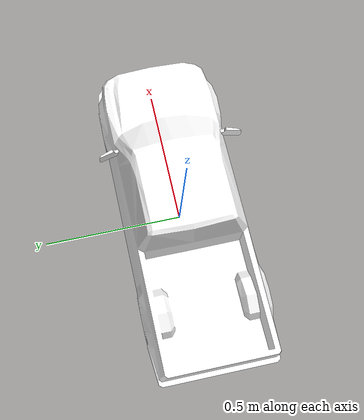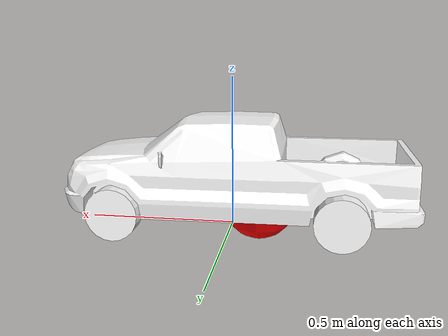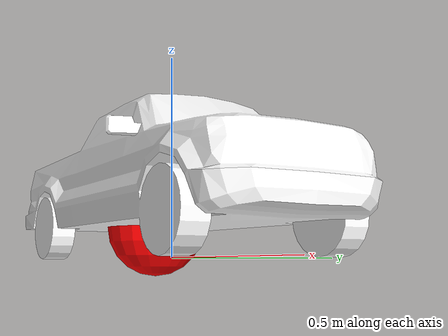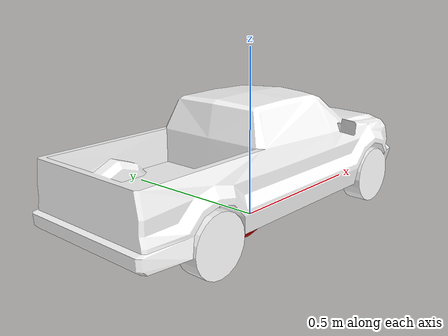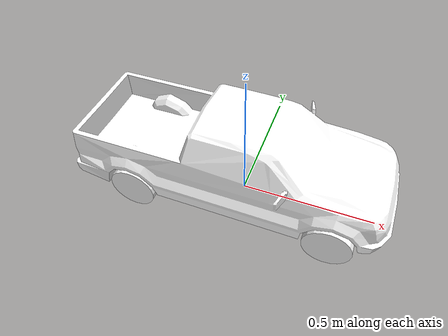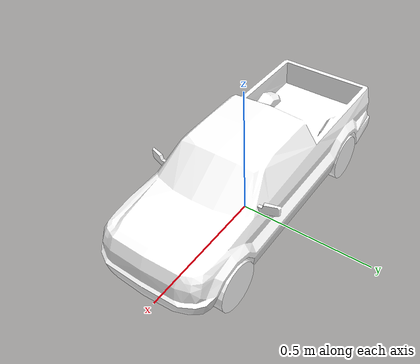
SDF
<?xml version='1.0'?>
<sdf version='1.6'>
<model name="box">
      <link name='link'>
      <self_collide>0</self_collide>
      <enable_wind>0</enable_wind>
      <kinematic>0</kinematic>
      <pose frame=''>-0.001072 0.00268 0 0 -0 0</pose>
      <gravity>1</gravity>
      <inertial>
        <mass>1</mass>
        <pose frame=''>0 0 0 0 -0 0</pose>
        <inertia>
          <ixx>1</ixx>
          <ixy>0</ixy>
          <ixz>0</ixz>
          <iyy>1</iyy>
          <iyz>0</iyz>
          <izz>1</izz>
        </inertia>
      </inertial>
      <visual name='visual'>
        <pose frame=''>0 0 0 0 0 -1.5708</pose>
        <geometry>
          <mesh>
            <uri>model://pickup/meshes/pickup.dae</uri>
            <scale>0.2 0.2 0.2</scale>
          </mesh>
        </geometry>
        <transparency>0</transparency>
        <cast_shadows>1</cast_shadows>
        <material>
          <script>
            <name>ModelPreview_10::link::visual_MATERIAL_</name>
            <uri>__default__</uri>
          </script>
          <ambient>0.999 0.999 0.999 1</ambient>
          <diffuse>0.999 0.999 0.999 1</diffuse>
          <specular>0.999 0.999 0.999 1</specular>
          <emissive>0 0 0 1</emissive>
          <shader type='vertex'>
            <normal_map>__default__</normal_map>
          </shader>
        </material>
      </visual>
      <collision name='collision'>
        <laser_retro>0</laser_retro>
        <max_contacts>10</max_contacts>
        <pose frame=''>0 0 0 0 0 -1.5708</pose>
        <geometry>
          <mesh>
            <uri>/home/hunter/.gazebo/models/pickup/meshes/pickup.dae</uri>
            <scale>0.2 0.2 0.2</scale>
          </mesh>
        </geometry>
        <surface>
          <friction>
            <ode>
              <mu>1</mu>
              <mu2>1</mu2>
              <fdir1>0 0 0</fdir1>
              <slip1>0</slip1>
              <slip2>0</slip2>
            </ode>
            <torsional>
              <coefficient>1</coefficient>
              <patch_radius>0</patch_radius>
              <surface_radius>0</surface_radius>
              <use_patch_radius>1</use_patch_radius>
              <ode>
                <slip>0</slip>
              </ode>
            </torsional>
          </friction>
          <bounce>
            <restitution_coefficient>0</restitution_coefficient>
            <threshold>1e+06</threshold>
          </bounce>
          <contact>
            <collide_without_contact>0</collide_without_contact>
            <collide_without_contact_bitmask>1</collide_without_contact_bitmask>
            <collide_bitmask>1</collide_bitmask>
            <ode>
              <soft_cfm>0</soft_cfm>
              <soft_erp>0.2</soft_erp>
              <kp>1e+13</kp>
              <kd>1</kd>
              <max_vel>0.01</max_vel>
              <min_depth>0</min_depth>
            </ode>
            <bullet>
              <split_impulse>1</split_impulse>
              <split_impulse_penetration_threshold>-0.01</split_impulse_penetration_threshold>
              <soft_cfm>0</soft_cfm>
              <soft_erp>0.2</soft_erp>
              <kp>1e+13</kp>
              <kd>1</kd>
            </bullet>
          </contact>
        </surface>
      </collision>
    </link>
    <link name='link_0'>
      <inertial>
        <mass>0.00028203</mass>
        <inertia>
          <ixx>1.2e-07</ixx>
          <ixy>0</ixy>
          <ixz>0</ixz>
          <iyy>1.2e-07</iyy>
          <iyz>0</iyz>
          <izz>1.2e-07</izz>
        </inertia>
        <pose frame=''>0 0 0 0 -0 0</pose>
      </inertial>
      <pose frame=''>-0.092649 0.002769 0.077731 0 -0 0</pose>
      <gravity>1</gravity>
      <self_collide>0</self_collide>
      <kinematic>0</kinematic>
      <enable_wind>0</enable_wind>
      <visual name='visual'>
        <pose frame=''>0 0 0 0 -0 0</pose>
        <geometry>
          <sphere>
            <radius>0.1227853</radius>
          </sphere>
        </geometry>
        <material>
          <lighting>1</lighting>
          <script>
            <uri>file://media/materials/scripts/gazebo.material</uri>
            <name>Gazebo/Grey</name>
          </script>
          <shader type='vertex'>
            <normal_map>__default__</normal_map>
          </shader>
          <diffuse>1 0 0 0</diffuse>
          <ambient>1 0.3 0.3 1</ambient>
          <specular>0.5 0.01 0.01 1</specular>
          <emissive>0 0 0 1</emissive>
        </material>
        <transparency>0</transparency>
        <cast_shadows>1</cast_shadows>
      </visual>
      <collision name='collision'>
        <laser_retro>0</laser_retro>
        <max_contacts>10</max_contacts>
        <pose frame=''>0 0 0 0 -0 0</pose>
        <geometry>
          <sphere>
            <radius>0.1227853</radius>
          </sphere>
        </geometry>
        <surface>
          <friction>
            <ode>
              <mu>1</mu>
              <mu2>1</mu2>
              <fdir1>0 0 0</fdir1>
              <slip1>0</slip1>
              <slip2>0</slip2>
            </ode>
            <torsional>
              <coefficient>1</coefficient>
              <patch_radius>0</patch_radius>
              <surface_radius>0</surface_radius>
              <use_patch_radius>1</use_patch_radius>
              <ode>
                <slip>0</slip>
              </ode>
            </torsional>
          </friction>
          <bounce>
            <restitution_coefficient>0</restitution_coefficient>
            <threshold>1e+06</threshold>
          </bounce>
          <contact>
            <collide_without_contact>0</collide_without_contact>
            <collide_without_contact_bitmask>1</collide_without_contact_bitmask>
            <collide_bitmask>1</collide_bitmask>
            <ode>
              <soft_cfm>0</soft_cfm>
              <soft_erp>0.2</soft_erp>
              <kp>1e+13</kp>
              <kd>1</kd>
              <max_vel>0.01</max_vel>
              <min_depth>0</min_depth>
            </ode>
            <bullet>
              <split_impulse>1</split_impulse>
              <split_impulse_penetration_threshold>-0.01</split_impulse_penetration_threshold>
              <soft_cfm>0</soft_cfm>
              <soft_erp>0.2</soft_erp>
              <kp>1e+13</kp>
              <kd>1</kd>
            </bullet>
          </contact>
        </surface>
      </collision>
    </link>
    <static>1</static>
    <allow_auto_disable>1</allow_auto_disable>
      <plugin name="push_animate" filename="libanimated_box.so"/>
    </model>
</sdf>
